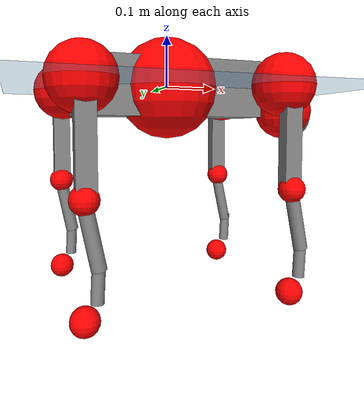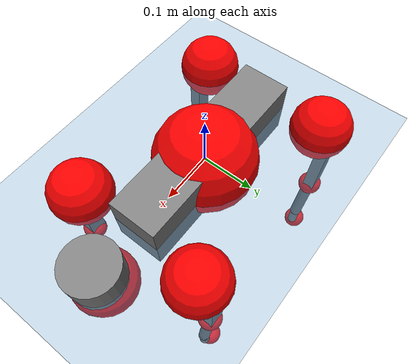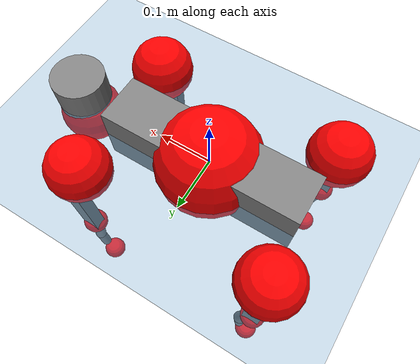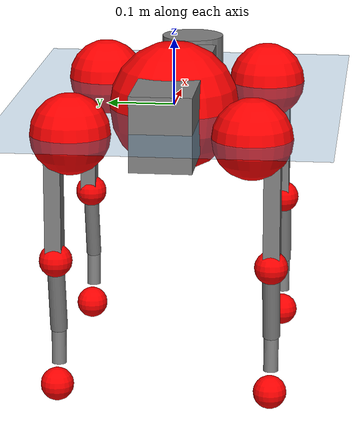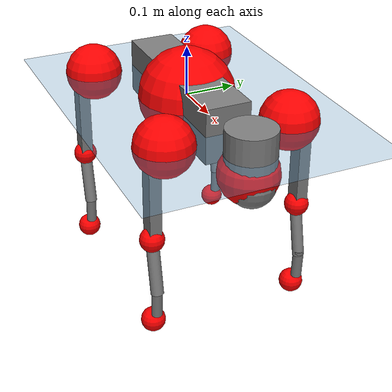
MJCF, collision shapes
<mujoco model="go2">
  <compiler angle="radian" assetdir="assets" balanceinertia="true" inertiafromgeom="false"/>

  <option timestep="0.005" density="1.2" viscosity="2e-05"/>

  <size nkey="1"/>

  <visual>
    <quality shadowsize="8192"/>
    <map shadowclip="0.5"/>
  </visual>

  <default>
    <default class="/">
      <geom contype="0" conaffinity="0" group="1" solref="-1000 -80"/>
      <site size="0.01 0.005 0.005" group="5"/>
      <general forcelimited="true" biastype="affine" gainprm="20" biasprm="0 -20 -0.5"/>
      <default class="go2">
        <joint armature="0.01" damping="0.01" frictionloss="0.2"/>
        <geom condim="1" margin="0.001"/>
        <default class="visual">
          <geom type="mesh" group="2"/>
        </default>
        <default class="collision">
          <geom group="3"/>
          <default class="foot">
            <geom size="0.022 0 0" condim="6" priority="1" friction="0.8 0.02 0.01" solimp="0.015 1 0.022"/>
          </default>
        </default>
        <default class="reward_collision_sphere">
          <geom group="5" rgba="1 0 0 1"/>
        </default>
      </default>
    </default>
  </default>

  <asset>
    <texture type="skybox" colorspace="auto" name="//unnamed_texture_0" builtin="gradient" rgb1="0.95 0.95 0.95" rgb2="0.95 0.95 0.95" width="100" height="600"/>
    <texture type="2d" colorspace="auto" name="texplane" builtin="checker" rgb1="0.345 0.575 0.748" rgb2="0.345 0.575 0.748" markrgb="1 1 1" width="512" height="512"/>
    <material name="MatPlane" class="/" texture="texplane" texuniform="true" texrepeat="2 2" specular="0.9"/>
    <material name="metal" class="/" rgba="0.9 0.95 0.95 1"/>
    <material name="black" class="/" rgba="0 0 0 1"/>
    <material name="white" class="/"/>
    <material name="gray" class="/" rgba="0.671705 0.692426 0.77427 1"/>
    <mesh name="base_0" class="/" file="base_0.obj"/>
    <mesh name="base_1" class="/" file="base_1.obj"/>
    <mesh name="base_2" class="/" file="base_2.obj"/>
    <mesh name="base_3" class="/" file="base_3.obj"/>
    <mesh name="base_4" class="/" file="base_4.obj"/>
    <mesh name="hip_0" class="/" file="hip_0.obj"/>
    <mesh name="hip_1" class="/" file="hip_1.obj"/>
    <mesh name="thigh_0" class="/" file="thigh_0.obj"/>
    <mesh name="thigh_1" class="/" file="thigh_1.obj"/>
    <mesh name="thigh_mirror_0" class="/" file="thigh_mirror_0.obj"/>
    <mesh name="thigh_mirror_1" class="/" file="thigh_mirror_1.obj"/>
    <mesh name="calf_0" class="/" file="calf_0.obj"/>
    <mesh name="calf_1" class="/" file="calf_1.obj"/>
    <mesh name="calf_mirror_0" class="/" file="calf_mirror_0.obj"/>
    <mesh name="calf_mirror_1" class="/" file="calf_mirror_1.obj"/>
    <mesh name="foot" class="/" file="foot.obj"/>
  </asset>

  <worldbody>
    <geom name="floor" class="/" size="100 100 0.125" type="plane" group="0" material="MatPlane"/>
    <light name="toplight_shadow" class="/" pos="0 0 5" dir="0.0990148 0.0990148 -0.990148" type="directional" ambient="0.04 0.04 0.04" diffuse="0.55 0.55 0.55" specular="0.12 0.12 0.12"/>
    <light name="toplight_fill" class="/" pos="0 0 5" dir="0.0990148 0.0990148 -0.990148" type="directional" castshadow="false" ambient="0.04 0.04 0.04" diffuse="0.3 0.3 0.3" specular="0.08 0.08 0.08"/>
    <body name="trunk" childclass="go2" pos="-0.000169457 9.25199e-05 -0.00204041" quat="1 -1.10108e-05 0.000174076 -0.000163596">
      <inertial pos="0.0175354 -0.002851 -0.00453043" quat="-0.00198959 0.713496 -0.00323065 0.700649" mass="6.52983" diaginertia="0.0883718 0.161223 0.0141366"/>
      <joint name="//unnamed_joint_0" type="free" armature="0" damping="0" frictionloss="0"/>
      <geom name="//unnamed_geom_1" class="visual" material="black" mesh="base_0"/>
      <geom name="//unnamed_geom_2" class="visual" material="black" mesh="base_1"/>
      <geom name="//unnamed_geom_3" class="visual" material="black" mesh="base_2"/>
      <geom name="//unnamed_geom_4" class="visual" material="white" mesh="base_3"/>
      <geom name="//unnamed_geom_5" class="visual" material="gray" mesh="base_4"/>
      <geom name="trunk_1" class="collision" size="0.18445 0.0458428 0.0558939" type="box"/>
      <geom name="trunk_2" class="collision" size="0.0490298 0.0441268" pos="0.272232 0 0.00889422" type="cylinder"/>
      <geom name="trunk_3" class="collision" size="0.046088" pos="0.279873 0 -0.0533653"/>
      <geom name="//unnamed_geom_9" class="reward_collision_sphere" size="0.0980595"/>
      <geom name="//unnamed_geom_10" class="reward_collision_sphere" size="0.0588357" pos="0.267456 0 -0.040024"/>
      <site name="imu" pos="-0.0375723 0.00390714 0.0511549" size="0.00980595"/>
      <camera name="track" pos="0 -2.19433 0" quat="0.707107 0.707107 0 0" mode="trackcom"/>
      <camera name="ego_camera" pos="0.298022 0 0.040024" quat="-0.5 -0.5 0.5 0.5"/>
      <body name="FL_hip" pos="0.183142 0.0517343 0.00131972" quat="1 9.61649e-06 0.000187826 -9.61617e-05">
        <inertial pos="-0.00240941 0.00177043 -0.000258899" quat="0.498148 0.498592 0.500234 0.503012" mass="0.613401" diaginertia="0.000674485 0.000938915 0.000263479"/>
        <joint name="FL_hip_joint" pos="0 0 0" axis="0.9999 -0.013972 0.002333" stiffness="0.00749541" range="-1.04822 1.07323" armature="0.0111244" damping="0.00401345" frictionloss="0.206309"/>
        <geom name="//unnamed_geom_11" class="visual" material="metal" mesh="hip_0"/>
        <geom name="//unnamed_geom_12" class="visual" material="gray" mesh="hip_1"/>
        <geom name="//unnamed_geom_13" class="collision" size="0.0451074 0.0196119" pos="0 0.0877732 0" quat="0.707107 0.707107 0 0" type="cylinder"/>
        <geom name="//unnamed_geom_14" class="reward_collision_sphere" size="0.0588357" pos="0 0.0768016 0"/>
        <body name="FL_thigh" pos="1.03799e-05 0.106679 0.0020299" quat="1 -0.000260911 -0.000302006 -0.000875943">
          <inertial pos="-0.0035333 -0.0244539 -0.0263007" quat="0.829942 0.0834774 -0.0159165 0.551339" mass="1.11009" diaginertia="0.00458104 0.0092985 0.000496596"/>
          <joint name="FL_thigh_joint" pos="0 0 0" axis="0.00123388 0.999996 0.00238154" range="-1.55 3.46859" armature="0.0093564" damping="0.0132026" frictionloss="0.169618"/>
          <geom name="//unnamed_geom_15" class="visual" material="metal" mesh="thigh_0"/>
          <geom name="//unnamed_geom_16" class="visual" material="gray" mesh="thigh_1"/>
          <geom name="//unnamed_geom_17" class="collision" size="0.104433 0.0120123 0.0166701" pos="0 0 -0.0947234" quat="0.707107 0 0.707107 0" type="box"/>
          <body name="FL_calf" pos="0.00213404 -0.00253837 -0.192451" quat="0.999999 9.09584e-05 -0.000706976 -0.00110528">
            <inertial pos="0.0070947 -0.000388132 -0.124296" quat="0.713772 -0.000397994 -0.00452731 0.700364" mass="0.223018" diaginertia="0.00116733 0.00231322 2.95608e-05"/>
            <joint name="FL_calf_joint" pos="0 0 0" axis="0.00230605 0.999997 -0.00013628" stiffness="0.00217998" range="-2.76222 -0.838079" armature="0.0102452" damping="0" frictionloss="0.212852"/>
            <geom name="//unnamed_geom_18" class="visual" material="gray" mesh="calf_0"/>
            <geom name="//unnamed_geom_19" class="visual" material="black" mesh="calf_1"/>
            <geom name="FL_calf0" class="collision" size="0.0117671 0.0588357" pos="0.00764159 0 -0.0533653" quat="0.994493 0 -0.104807 0" type="cylinder"/>
            <geom name="//unnamed_geom_21" class="collision" size="0.0107865 0.0318693" pos="0.019104 0 -0.131634" quat="0.999688 0 0.0249974 0" type="cylinder"/>
            <geom name="//unnamed_geom_22" class="visual" pos="0 0 -0.189447" quat="1 0 0 0" material="black" mesh="foot"/>
            <geom name="FL_foot" class="foot" size="0.0174866" pos="-0.0019104 0 -0.189447"/>
            <geom name="//unnamed_geom_24" class="reward_collision_sphere" size="0.0245149"/>
            <geom name="//unnamed_geom_25" class="reward_collision_sphere" size="0.0245149" pos="-0.0019104 0 -0.189447"/>
            <site name="FL_foot" class="foot" pos="-0.0019104 0 -0.189447" size="0.00980595"/>
          </body>
        </body>
      </body>
      <body name="FR_hip" pos="0.183592 -0.0503533 0.00108839" quat="1 3.92209e-05 2.72612e-05 3.87949e-05">
        <inertial pos="-0.00233726 -0.00176984 -0.000364551" quat="0.498402 0.50454 0.498939 0.498092" mass="0.660339" diaginertia="0.000714234 0.000982032 0.000273314"/>
        <joint name="FR_hip_joint" pos="0 0 0" axis="0.999999 -0.00115325 -0.000551495" stiffness="0.00557465" range="-1.1046 1.0341" armature="0.00850679" damping="0.0158745" frictionloss="0.169599"/>
        <geom name="//unnamed_geom_26" class="visual" pos="0 1.80978e-09 7.76252e-08" quat="4.63268e-05 1 0 0" material="metal" mesh="hip_0"/>
        <geom name="//unnamed_geom_27" class="visual" pos="0 2.93387e-09 -1.91997e-07" quat="4.63268e-05 1 0 0" material="gray" mesh="hip_1"/>
        <geom name="//unnamed_geom_28" class="collision" size="0.0451074 0.0196119" pos="0 -0.0877732 0" quat="0.707107 0.707107 0 0" type="cylinder"/>
        <geom name="//unnamed_geom_29" class="reward_collision_sphere" size="0.0588357" pos="0 -0.0768016 0"/>
        <body name="FR_thigh" pos="3.05032e-05 -0.101822 -0.00118237" quat="1 -0.000397331 -1.96556e-05 0.000151793">
          <inertial pos="-0.00374432 0.0238315 -0.0287535" quat="0.554448 -0.00818683 0.0896635 0.827333" mass="1.01817" diaginertia="0.00457844 0.00920357 0.00047782"/>
          <joint name="FR_thigh_joint" pos="0 0 0" axis="0.00256785 -0.999931 -0.0114398" stiffness="0.00199123" range="-3.43813 1.60756" armature="0.00987107" damping="0" frictionloss="0.220023"/>
          <geom name="//unnamed_geom_30" class="visual" material="metal" mesh="thigh_mirror_0"/>
          <geom name="//unnamed_geom_31" class="visual" material="gray" mesh="thigh_mirror_1"/>
          <geom name="//unnamed_geom_32" class="collision" size="0.104433 0.0120123 0.0166701" pos="0 0 -0.0947234" quat="0.707107 0 0.707107 0" type="box"/>
          <body name="FR_calf" pos="0.00248969 -0.00271279 -0.18932" quat="1 -6.53102e-05 -0.000134648 -1.48209e-05">
            <inertial pos="0.00618827 0.000311976 -0.123204" quat="0.705276 -0.00612895 0.00754052 0.708866" mass="0.229632" diaginertia="0.00114303 0.00224952 2.96458e-05"/>
            <joint name="FR_calf_joint" pos="0 0 0" axis="0.00226976 -0.999986 -0.00487046" range="0.808465 2.75933" armature="0.0101234" damping="0.00550546" frictionloss="0.169751"/>
            <geom name="//unnamed_geom_33" class="visual" material="gray" mesh="calf_mirror_0"/>
            <geom name="//unnamed_geom_34" class="visual" material="black" mesh="calf_mirror_1"/>
            <geom name="FR_calf0" class="collision" size="0.0127477 0.0588357" pos="0.00955199 0 -0.0533653" quat="0.995004 0 -0.0998334 0" type="cylinder"/>
            <geom name="//unnamed_geom_36" class="collision" size="0.0107865 0.0318693" pos="0.019104 0 -0.131634" quat="0.999688 0 0.0249974 0" type="cylinder"/>
            <geom name="//unnamed_geom_37" class="visual" pos="0 0 -0.189447" quat="1 0 0 0" material="black" mesh="foot"/>
            <geom name="FR_foot" class="foot" size="0.0206104" pos="-0.0019104 0 -0.189447"/>
            <geom name="//unnamed_geom_39" class="reward_collision_sphere" size="0.0245149"/>
            <geom name="//unnamed_geom_40" class="reward_collision_sphere" size="0.0245149" pos="-0.0019104 0 -0.189447"/>
            <site name="FR_foot" class="foot" pos="-0.0019104 0 -0.189447" size="0.00980595"/>
          </body>
        </body>
      </body>
      <body name="RL_hip" pos="-0.187324 0.0519189 0.000433383" quat="1 4.62516e-06 2.22993e-05 2.58336e-05">
        <inertial pos="0.00544115 0.0052151 0.000131237" quat="0.506581 0.494967 0.502804 0.495552" mass="0.635993" diaginertia="0.000683362 0.00094709 0.000249604"/>
        <joint name="RL_hip_joint" pos="0 0 0" axis="-0.99996 -0.00864446 -0.00212238" stiffness="0.00282417" range="-1.05427 0.997529" armature="0.00833818" damping="0" frictionloss="0.191151"/>
        <geom name="//unnamed_geom_41" class="visual" pos="-5.73025e-10 0 -1.12326e-07" quat="4.63268e-05 0 1 0" material="metal" mesh="hip_0"/>
        <geom name="//unnamed_geom_42" class="visual" pos="-9.28941e-10 0 -9.96172e-08" quat="4.63268e-05 0 1 0" material="gray" mesh="hip_1"/>
        <geom name="//unnamed_geom_43" class="collision" size="0.0451074 0.0196119" pos="0 0.0877732 0" quat="0.707107 0.707107 0 0" type="cylinder"/>
        <geom name="//unnamed_geom_44" class="reward_collision_sphere" size="0.0588357" pos="0 0.0768016 0"/>
        <body name="RL_thigh" pos="-0.00165041 0.101587 0.000425292" quat="1 1.7842e-05 -3.92018e-06 2.23568e-05">
          <inertial pos="-0.00332267 -0.0216441 -0.0283942" quat="0.829488 0.0847195 -0.0200742 0.551696" mass="1.08779" diaginertia="0.00471733 0.00910753 0.000484421"/>
          <joint name="RL_thigh_joint" pos="0 0 0" axis="-0.00705081 0.999947 -0.00748234" stiffness="0.0114084" range="-0.516791 4.55261" armature="0.00939654" damping="0" frictionloss="0.192836"/>
          <geom name="//unnamed_geom_45" class="visual" material="metal" mesh="thigh_0"/>
          <geom name="//unnamed_geom_46" class="visual" material="gray" mesh="thigh_1"/>
          <geom name="//unnamed_geom_47" class="collision" size="0.104433 0.0120123 0.0166701" pos="0 0 -0.0947234" quat="0.707107 0 0.707107 0" type="box"/>
          <body name="RL_calf" pos="-0.0013739 -0.00152097 -0.189514" quat="1 -1.20061e-05 0.000116612 -5.24745e-05">
            <inertial pos="0.00596952 -0.000539859 -0.125989" quat="0.717777 -0.00310736 -0.00964685 0.6962" mass="0.226719" diaginertia="0.0011845 0.00230281 2.85314e-05"/>
            <joint name="RL_calf_joint" pos="0 0 0" axis="0.00259444 0.999995 -0.00203531" range="-2.71459 -0.835083" armature="0.00872767" damping="0.00435486" frictionloss="0.214227"/>
            <geom name="//unnamed_geom_48" class="visual" material="gray" mesh="calf_0"/>
            <geom name="//unnamed_geom_49" class="visual" material="black" mesh="calf_1"/>
            <geom name="RL_calf0" class="collision" size="0.0127477 0.0588357" pos="0.00955199 0 -0.0533653" quat="0.995004 0 -0.0998334 0" type="cylinder"/>
            <geom name="//unnamed_geom_51" class="collision" size="0.0107865 0.0318693" pos="0.019104 0 -0.131634" quat="0.999688 0 0.0249974 0" type="cylinder"/>
            <geom name="//unnamed_geom_52" class="visual" pos="0 0 -0.189447" quat="1 0 0 0" material="black" mesh="foot"/>
            <geom name="RL_foot" class="foot" size="0.0188913" pos="-0.0019104 0 -0.189447"/>
            <geom name="//unnamed_geom_54" class="reward_collision_sphere" size="0.0245149"/>
            <geom name="//unnamed_geom_55" class="reward_collision_sphere" size="0.0245149" pos="-0.0019104 0 -0.189447"/>
            <site name="RL_foot" class="foot" pos="-0.0019104 0 -0.189447" size="0.00980595"/>
          </body>
        </body>
      </body>
      <body name="RR_hip" pos="-0.18499 -0.0545479 -0.000537072" quat="0.999999 -0.000627405 -0.000672821 -0.000793124">
        <inertial pos="0.00238259 -0.00246852 0.0025733" quat="0.501921 0.498384 0.495059 0.504585" mass="0.631792" diaginertia="0.000694441 0.00094004 0.000255598"/>
        <joint name="RR_hip_joint" pos="0 0 0" axis="-0.999998 0.000492129 0.00166863" range="-1.09738 1.09911" armature="0.00984515" damping="0" frictionloss="0.192807"/>
        <geom name="//unnamed_geom_56" class="visual" pos="5.77939e-10 1.80978e-09 -1.89951e-07" quat="2.14617e-09 4.63268e-05 4.63268e-05 -1" material="metal" mesh="hip_0"/>
        <geom name="//unnamed_geom_57" class="visual" pos="9.16784e-10 2.93387e-09 9.23796e-08" quat="2.14617e-09 4.63268e-05 4.63268e-05 -1" material="gray" mesh="hip_1"/>
        <geom name="//unnamed_geom_58" class="collision" size="0.0451074 0.0196119" pos="0 -0.0877732 0" quat="0.707107 0.707107 0 0" type="cylinder"/>
        <geom name="//unnamed_geom_59" class="reward_collision_sphere" size="0.0588357" pos="0 -0.0768016 0"/>
        <body name="RR_thigh" pos="-0.000672841 -0.106179 0.00178612" quat="1 -6.26811e-05 5.31064e-05 5.0111e-05">
          <inertial pos="-0.00135263 0.0255675 -0.030197" quat="0.551924 -0.0193752 0.0847404 0.829351" mass="1.01652" diaginertia="0.00442986 0.00905461 0.000467313"/>
          <joint name="RR_thigh_joint" pos="0 0 0" axis="-0.0153826 -0.999823 0.0108283" range="-4.52986 0.518482" armature="0.00978023" damping="0.0157765" frictionloss="0.19375"/>
          <geom name="//unnamed_geom_60" class="visual" material="metal" mesh="thigh_mirror_0"/>
          <geom name="//unnamed_geom_61" class="visual" material="gray" mesh="thigh_mirror_1"/>
          <geom name="//unnamed_geom_62" class="collision" size="0.104433 0.0120123 0.0166701" pos="0 0 -0.0947234" quat="0.707107 0 0.707107 0" type="box"/>
          <body name="RR_calf" pos="-0.00225105 0.0005481 -0.191075" quat="1 0.00017183 -0.00023307 -8.12537e-05">
            <inertial pos="0.00580894 0.000862103 -0.125407" quat="0.701724 -0.0162942 0.00668493 0.712232" mass="0.226004" diaginertia="0.00116699 0.00240197 2.97733e-05"/>
            <joint name="RR_calf_joint" pos="0 0 0" axis="-0.00171052 -0.999995 0.00276936" stiffness="0.00987683" range="0.854124 2.74021" armature="0.00846976" damping="0.00939128" frictionloss="0.197141"/>
            <geom name="//unnamed_geom_63" class="visual" material="gray" mesh="calf_mirror_0"/>
            <geom name="//unnamed_geom_64" class="visual" material="black" mesh="calf_mirror_1"/>
            <geom name="RR_calf0" class="collision" size="0.0127477 0.0588357" pos="0.00955199 0 -0.0533653" quat="0.995004 0 -0.0998334 0" type="cylinder"/>
            <geom name="//unnamed_geom_66" class="collision" size="0.0107865 0.0318693" pos="0.019104 0 -0.131634" quat="0.999688 0 0.0249974 0" type="cylinder"/>
            <geom name="//unnamed_geom_67" class="visual" pos="0 0 -0.189447" quat="1 0 0 0" material="black" mesh="foot"/>
            <geom name="RR_foot" class="foot" size="0.0204498" pos="-0.0019104 0 -0.189447"/>
            <geom name="//unnamed_geom_69" class="reward_collision_sphere" size="0.0245149"/>
            <geom name="//unnamed_geom_70" class="reward_collision_sphere" size="0.0245149" pos="-0.0019104 0 -0.189447"/>
            <site name="RR_foot" class="foot" pos="-0.0019104 0 -0.189447" size="0.00980595"/>
          </body>
        </body>
      </body>
    </body>
  </worldbody>

  <contact>
    <pair class="/" geom1="floor" geom2="FL_foot" name="//unnamed_contact_0"/>
    <pair class="/" geom1="floor" geom2="FR_foot" name="//unnamed_contact_1"/>
    <pair class="/" geom1="floor" geom2="RL_foot" name="//unnamed_contact_2"/>
    <pair class="/" geom1="floor" geom2="RR_foot" name="//unnamed_contact_3"/>
  </contact>

  <actuator>
    <general name="FL_hip" class="/" joint="FL_hip_joint" forcerange="-24.0412 24.0412" gainprm="19.1664" biasprm="0 -19.1664 -0.500985"/>
    <general name="FL_thigh" class="/" joint="FL_thigh_joint" forcerange="-22.068 22.068" gainprm="19.1664" biasprm="0 -19.1664 -0.500985"/>
    <general name="FL_calf" class="/" joint="FL_calf_joint" forcerange="-46.0341 46.0341" gainprm="19.1664" biasprm="0 -19.1664 -0.500985"/>
    <general name="FR_hip" class="/" joint="FR_hip_joint" forcerange="-21.7966 21.7966" gainprm="19.1664" biasprm="0 -19.1664 -0.500985"/>
    <general name="FR_thigh" class="/" joint="FR_thigh_joint" forcerange="-23.6687 23.6687" gainprm="19.1664" biasprm="0 -19.1664 -0.500985"/>
    <general name="FR_calf" class="/" joint="FR_calf_joint" forcerange="-39.7963 39.7963" gainprm="19.1664" biasprm="0 -19.1664 -0.500985"/>
    <general name="RL_hip" class="/" joint="RL_hip_joint" forcerange="-23.2406 23.2406" gainprm="19.1664" biasprm="0 -19.1664 -0.500985"/>
    <general name="RL_thigh" class="/" joint="RL_thigh_joint" forcerange="-20.9391 20.9391" gainprm="19.1664" biasprm="0 -19.1664 -0.500985"/>
    <general name="RL_calf" class="/" joint="RL_calf_joint" forcerange="-46.276 46.276" gainprm="19.1664" biasprm="0 -19.1664 -0.500985"/>
    <general name="RR_hip" class="/" joint="RR_hip_joint" forcerange="-23.6076 23.6076" gainprm="19.1664" biasprm="0 -19.1664 -0.500985"/>
    <general name="RR_thigh" class="/" joint="RR_thigh_joint" forcerange="-20.8609 20.8609" gainprm="19.1664" biasprm="0 -19.1664 -0.500985"/>
    <general name="RR_calf" class="/" joint="RR_calf_joint" forcerange="-49.0592 49.0592" gainprm="19.1664" biasprm="0 -19.1664 -0.500985"/>
  </actuator>

  <sensor>
    <gyro site="imu" name="imu_angular_velocity"/>
    <velocimeter site="imu" name="imu_linear_velocity"/>
    <framelinvel objtype="site" objname="FL_foot" name="FL_foot_global_linear_velocity"/>
    <framelinvel objtype="site" objname="FR_foot" name="FR_foot_global_linear_velocity"/>
    <framelinvel objtype="site" objname="RL_foot" name="RL_foot_global_linear_velocity"/>
    <framelinvel objtype="site" objname="RR_foot" name="RR_foot_global_linear_velocity"/>
  </sensor>

  <keyframe>
    <key name="home" qpos="0 0 0.325 1 0 0 0 0.1 0.8 -1.5 -0.1 -0.8 1.5 -0.1 0.8 -1.5 0.1 -0.8 1.5"/>
  </keyframe>
</mujoco>
